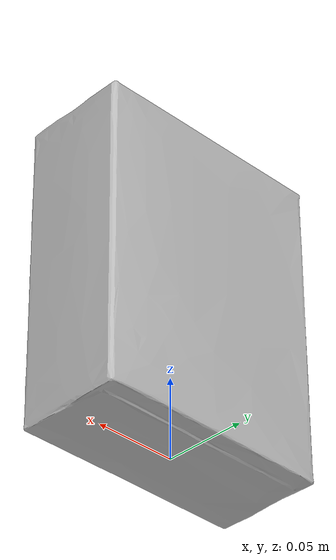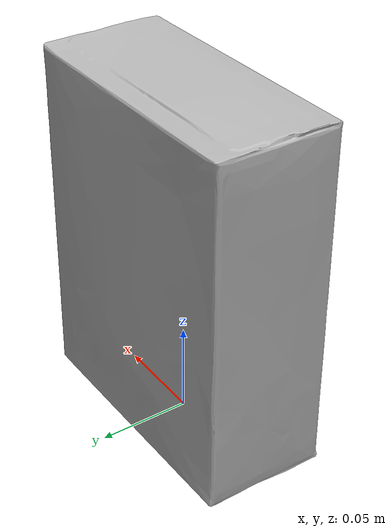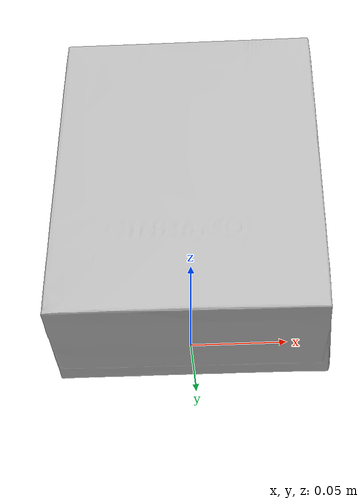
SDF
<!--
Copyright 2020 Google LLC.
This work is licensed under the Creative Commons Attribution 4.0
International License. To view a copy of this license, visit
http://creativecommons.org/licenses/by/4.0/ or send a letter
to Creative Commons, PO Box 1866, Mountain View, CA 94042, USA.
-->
<?xml version="1.0" ?>
<sdf version="1.6">
  <model name="Nestle_Carnation_Cinnamon_Coffeecake_Kit_1913OZ">
    <link name="link_0">
      <visual name="visual">
        <geometry>
          <mesh>
            <uri>model://Nestle_Carnation_Cinnamon_Coffeecake_Kit_1913OZ/meshes/model.obj</uri>
          </mesh>
        </geometry>
      </visual>
      <collision name="collision_0">
        <geometry>
          <mesh>
            <uri>model://Nestle_Carnation_Cinnamon_Coffeecake_Kit_1913OZ/meshes/model.obj</uri>
          </mesh>
        </geometry>
      </collision>
    </link>
  </model>
</sdf>
